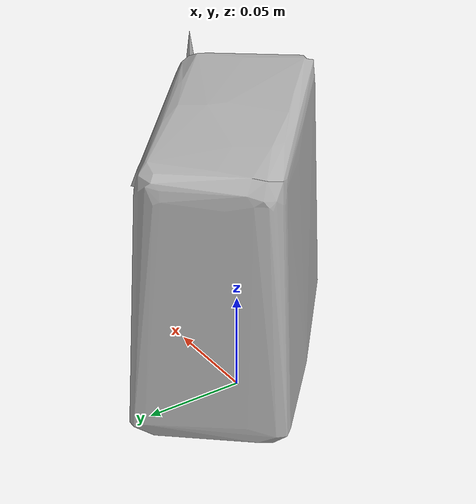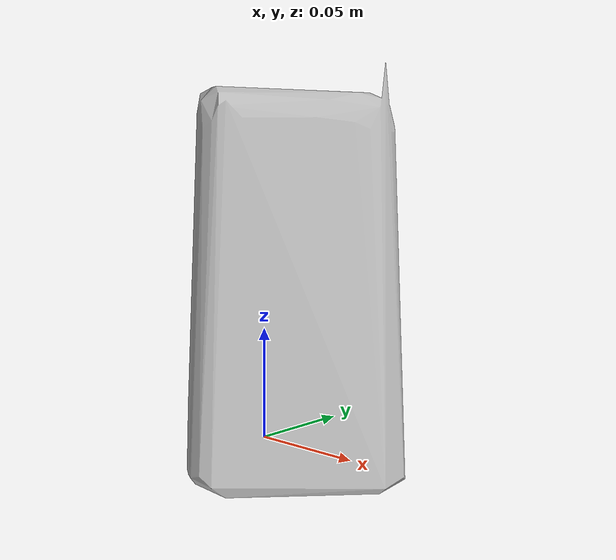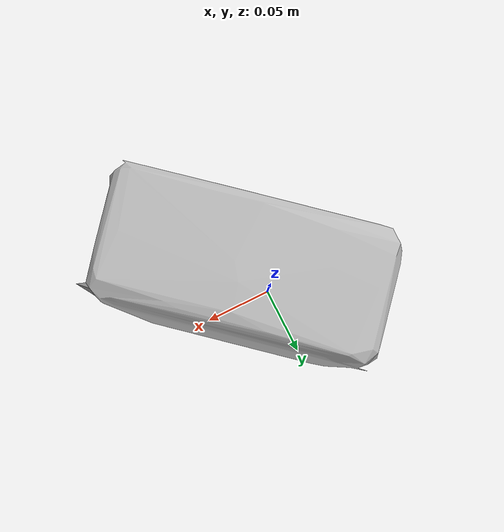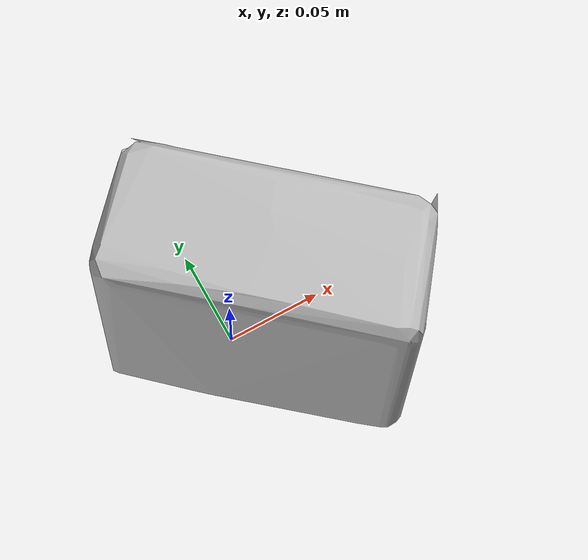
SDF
<?xml version='1.0'?>
<sdf version="1.4">
  <model name="nature_valley_soft_baked_oatmeal_squares_peanut_butter">
    <static>false</static>
    <link name="link">
      <inertial>
        <pose>0.016690413484314635 -0.006907416718892084 0.07262384473726181 1.523354743269252 0.002689390732935477 -2.2959200485662867</pose>
        <mass>0.1459594041277307</mass>
        <inertia>
          <ixx>0.00047868471089963923</ixx>
          <ixy>1.5751408298564367e-21</ixy>
          <ixz>-1.0014059882739948e-19</ixz>
          <iyy>0.00031571274864404964</iyy>
          <iyz>-4.954077803958849e-21</iyz>
          <izz>0.0002926210643969092</izz>
        </inertia>
      </inertial>
      <collision name="collision">
        <geometry>
          <mesh>
            <!-- Use a downsampled mesh for collisions -->
            <uri>model:///nature_valley_soft_baked_oatmeal_squares_peanut_butter/nature_valley_soft_baked_oatmeal_squares_peanut_butter_250_collision.obj</uri>
	        </mesh>
        </geometry>
        <surface>
      </surface>
      </collision>
      <visual name="visual">
        <geometry>
          <mesh>
            <uri>model:///nature_valley_soft_baked_oatmeal_squares_peanut_butter/optimized_tsdf_texture_mapped_mesh.obj</uri>
	        </mesh>
        </geometry>
        <material>
          <script>
            <uri>model:///nature_valley_soft_baked_oatmeal_squares_peanut_butter/nature_valley_soft_baked_oatmeal_squares_peanut_butter.material</uri>
            <name>nature_valley_soft_baked_oatmeal_squares_peanut_butter</name>
          </script>
        </material>
      </visual>
    </link>
  </model>
</sdf>
